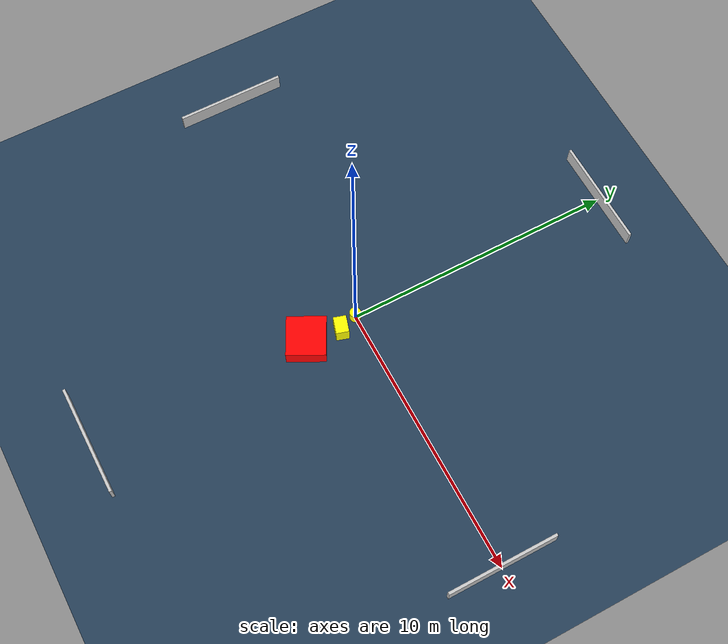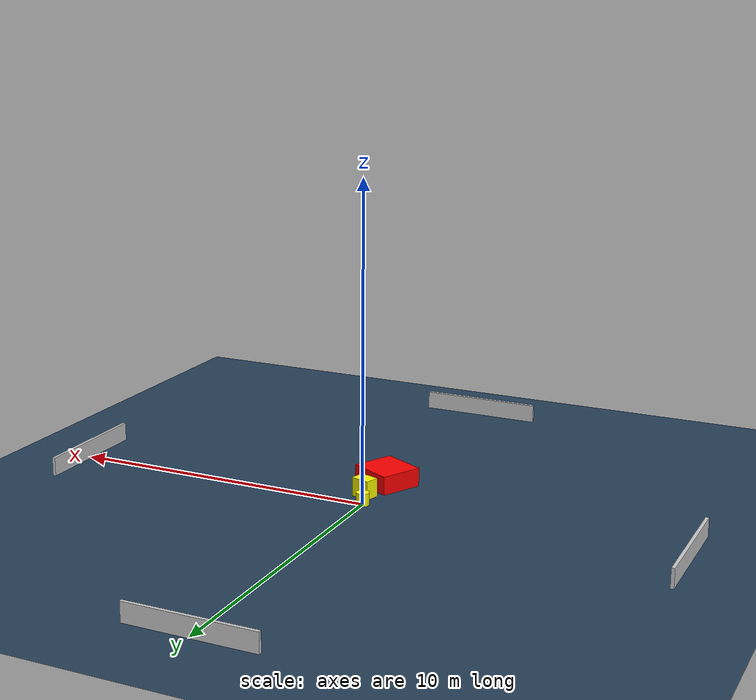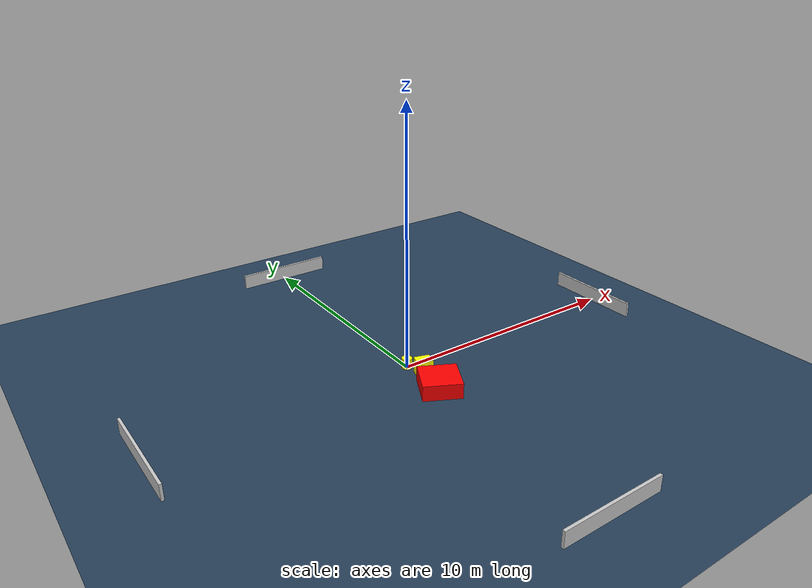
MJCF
<?xml version="1.0" ?>
<mujoco model="generated_environment">
  <option timestep="0.01" integrator="RK4" cone="elliptic"/>
  <default>
    <geom density="1"/>
  </default>
  <asset>
    <texture builtin="gradient" height="3072" name="skybox" rgb1="0.3 0.5 0.7" rgb2="0 0 0" type="skybox" width="512"/>
    <texture builtin="checker" height="300" name="groundplane" rgb1="0.2 0.3 0.4" rgb2="0.1 0.2 0.3" type="2d" width="300"/>
    <material name="groundplane" reflectance="0.2" texrepeat="5 5" texture="groundplane"/>
  </asset>
  <worldbody>
    <light dir="0 0 -1" directional="true" pos="0 0 1.5"/>
    <geom condim="3" friction="0.5 0.005 0.001" material="groundplane" name="floor" pos="0 0 0" size="0 0 0.05" type="plane"/>
    <body name="walls">
      <geom name="wall_1" condim="4" pos="-10.0 0.0 0.3" rgba="0.800000011920929 0.800000011920929 0.800000011920929 1.0" size="0.05 2.0 0.3" type="box"/>
      <geom name="wall_2" condim="4" pos="10.0 0.0 0.3" rgba="0.800000011920929 0.800000011920929 0.800000011920929 1.0" size="0.05 2.0 0.3" type="box"/>
      <geom name="wall_3" condim="4" pos="0.0 -10.0 0.3" rgba="0.800000011920929 0.800000011920929 0.800000011920929 1.0" size="2.0 0.05 0.3" type="box"/>
      <geom name="wall_4" condim="4" pos="0.0 10.0 0.3" rgba="0.800000011920929 0.800000011920929 0.800000011920929 1.0" size="2.0 0.05 0.3" type="box"/>
    </body>
    <body name="robot">
      <joint name="joint_x" type="slide" pos="0 0 0" axis="1 0 0"/>
      <joint name="joint_y" type="slide" pos="0 0 0" axis="0 1 0"/>
      <geom name="robot" type="cylinder" pos="0.0 0.0 0.2" size="0.2 0.2 0.0" mass="5.0" friction="1.0 0.005 0.0001" condim="4" rgba="1.0 1.0 0.0 1.0"/>
    </body>
    <body name="obstacle_1_movable">
      <geom name="obstacle_1_movable" condim="4" pos="0.25622038958602106 -0.6865362628603698 0.3" euler="0 0 162.8820718393826" friction="0.0 0.005 0.001" rgba="1.0 1.0 0.0 1.0" size="0.3106944995774156 0.23116087793816142 0.3" type="box" mass="0.1"/>
      <joint type="free"/>
    </body>
    <body name="obstacle_2_static">
      <geom name="obstacle_2_static" condim="4" pos="0.0635194146548577 -1.9357842776430525 0.3" euler="0 0 332.5700373722449" friction="0.0 0.005 0.001" rgba="1.0 0.0 0.0 1.0" size="0.729696188781431 0.6969966132854671 0.3" type="box"/>
    </body>
  </worldbody>
  <actuator>
    <motor name="actuator_x" joint="joint_x" gear="1" ctrlrange="-1 1"/>
    <motor name="actuator_y" joint="joint_y" gear="1" ctrlrange="-1 1"/>
  </actuator>
</mujoco>
